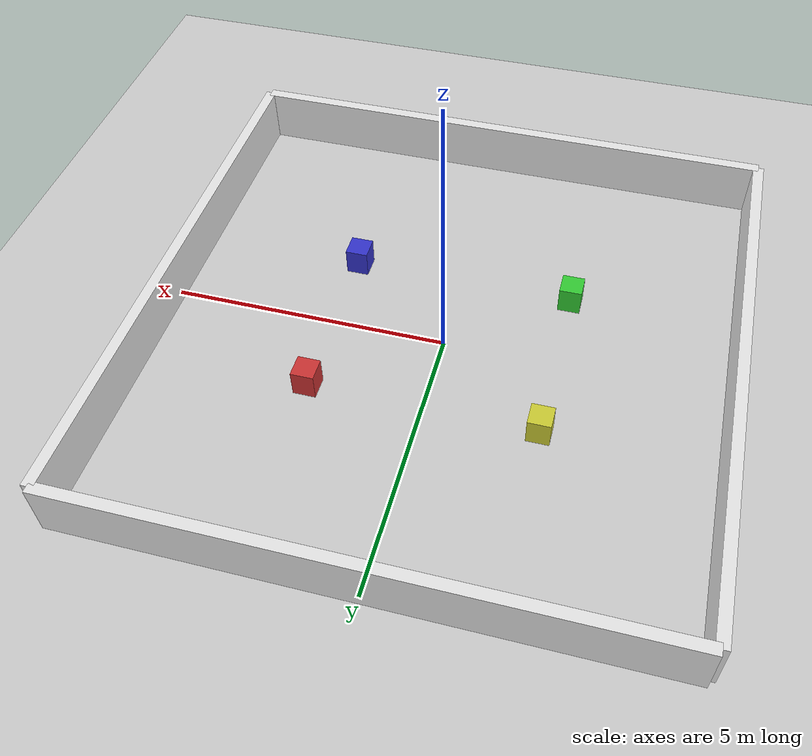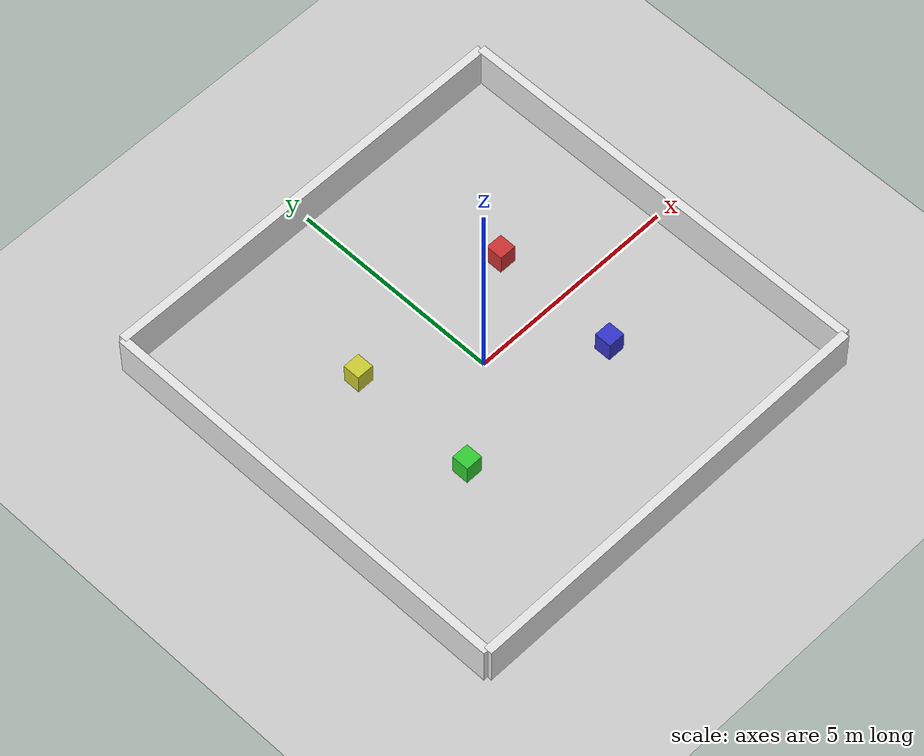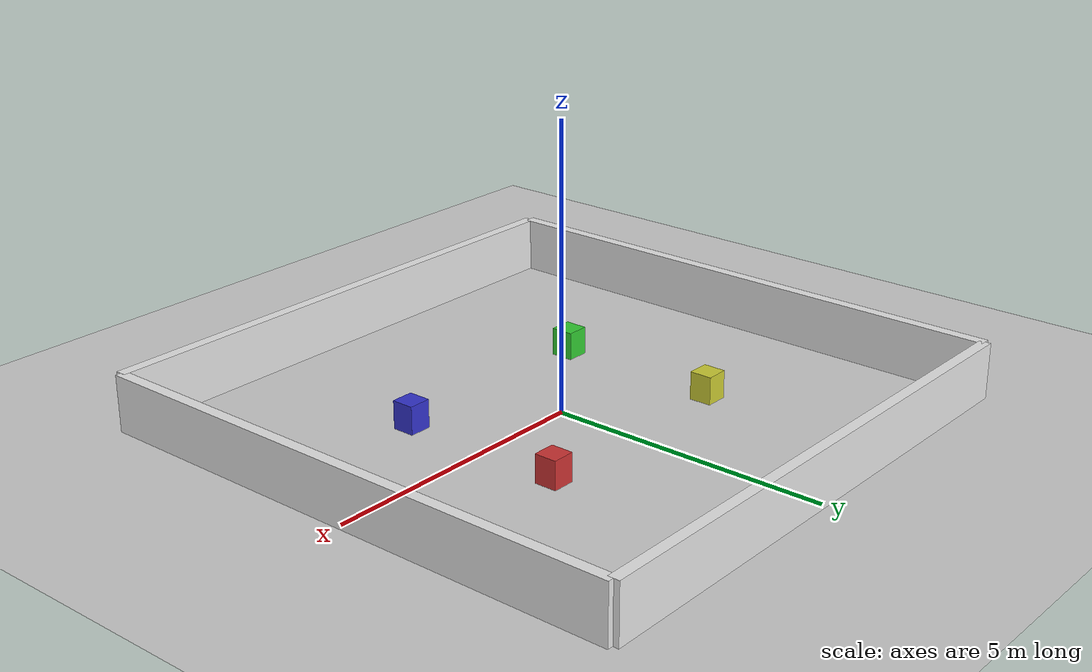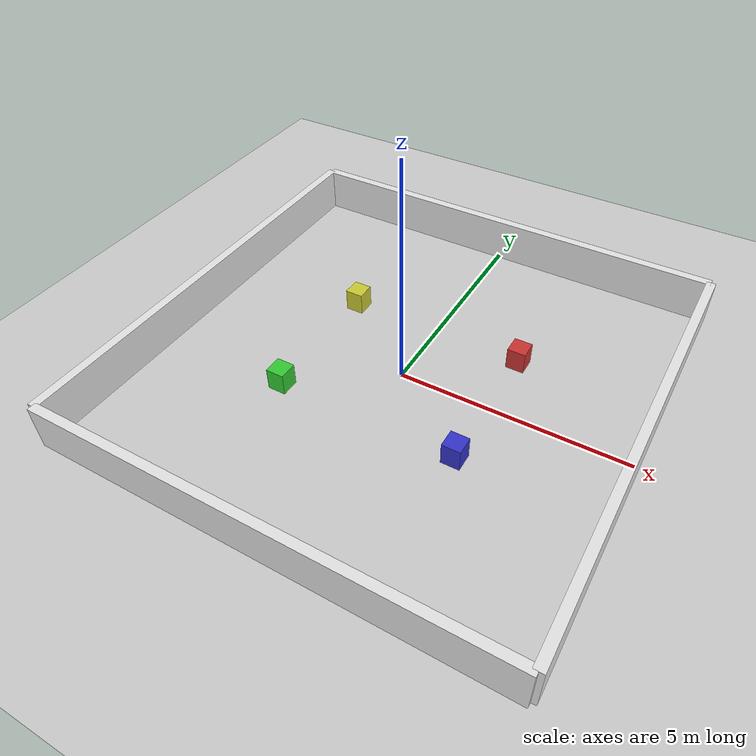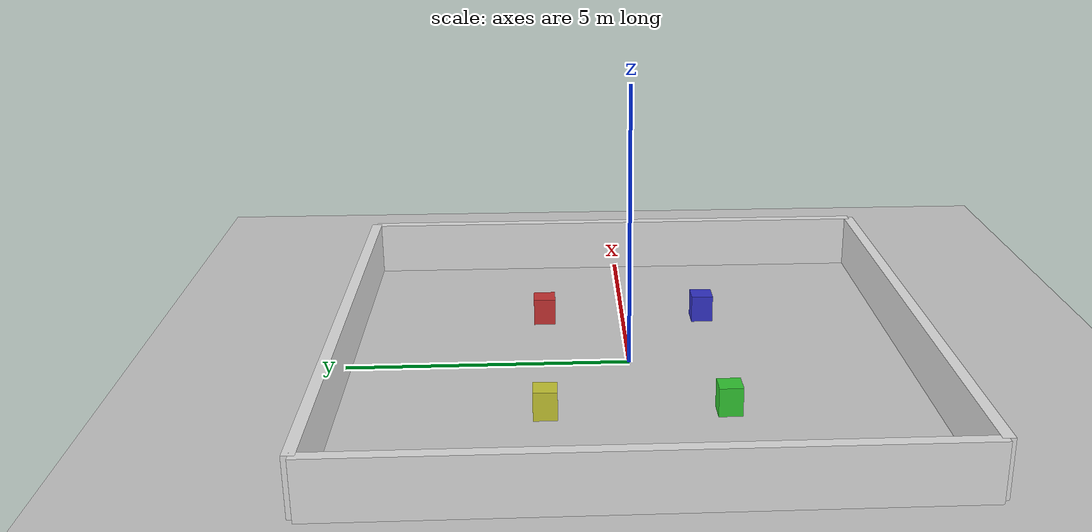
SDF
<?xml version="1.0" ?>
<sdf version="1.8">
  <world name="test_room">

    <physics name="default_physics" type="ode">
      <max_step_size>0.01</max_step_size>
      <real_time_factor>1.0</real_time_factor>
      <real_time_update_rate>100</real_time_update_rate>
    </physics>

    <plugin filename="gz-sim-physics-system"
            name="gz::sim::systems::Physics"/>
    <plugin filename="gz-sim-user-commands-system"
            name="gz::sim::systems::UserCommands"/>
    <plugin filename="gz-sim-scene-broadcaster-system"
            name="gz::sim::systems::SceneBroadcaster"/>
    <plugin filename="gz-sim-sensors-system"
            name="gz::sim::systems::Sensors">
      <render_engine>ogre2</render_engine>
    </plugin>

    <!-- Lighting -->
    <light type="directional" name="sun">
      <cast_shadows>true</cast_shadows>
      <pose>0 0 10 0 0 0</pose>
      <diffuse>1 1 1 1</diffuse>
      <specular>0.5 0.5 0.5 1</specular>
      <direction>-0.5 0.1 -0.9</direction>
    </light>

    <!-- Ground plane -->
    <model name="ground_plane">
      <static>true</static>
      <link name="link">
        <collision name="collision">
          <geometry><plane><normal>0 0 1</normal></plane></geometry>
        </collision>
        <visual name="visual">
          <geometry><plane><normal>0 0 1</normal><size>20 20</size></plane></geometry>
          <material><ambient>0.8 0.8 0.8 1</ambient></material>
        </visual>
      </link>
    </model>

    <!-- Room walls -->
    <model name="wall_north">
      <static>true</static>
      <pose>5 0 0.5 0 0 0</pose>
      <link name="link">
        <collision name="collision">
          <geometry><box><size>0.2 10 1.0</size></box></geometry>
        </collision>
        <visual name="visual">
          <geometry><box><size>0.2 10 1.0</size></box></geometry>
          <material><ambient>0.9 0.9 0.9 1</ambient></material>
        </visual>
      </link>
    </model>

    <model name="wall_south">
      <static>true</static>
      <pose>-5 0 0.5 0 0 0</pose>
      <link name="link">
        <collision name="collision">
          <geometry><box><size>0.2 10 1.0</size></box></geometry>
        </collision>
        <visual name="visual">
          <geometry><box><size>0.2 10 1.0</size></box></geometry>
          <material><ambient>0.9 0.9 0.9 1</ambient></material>
        </visual>
      </link>
    </model>

    <model name="wall_east">
      <static>true</static>
      <pose>0 5 0.5 0 0 0</pose>
      <link name="link">
        <collision name="collision">
          <geometry><box><size>10 0.2 1.0</size></box></geometry>
        </collision>
        <visual name="visual">
          <geometry><box><size>10 0.2 1.0</size></box></geometry>
          <material><ambient>0.9 0.9 0.9 1</ambient></material>
        </visual>
      </link>
    </model>

    <model name="wall_west">
      <static>true</static>
      <pose>0 -5 0.5 0 0 0</pose>
      <link name="link">
        <collision name="collision">
          <geometry><box><size>10 0.2 1.0</size></box></geometry>
        </collision>
        <visual name="visual">
          <geometry><box><size>10 0.2 1.0</size></box></geometry>
          <material><ambient>0.9 0.9 0.9 1</ambient></material>
        </visual>
      </link>
    </model>

    <!-- Landmark boxes — give RTAB-Map visual features to track -->
    <model name="box_a">
      <static>true</static>
      <pose>2.0 1.5 0.25 0 0 0</pose>
      <link name="link">
        <collision name="collision">
          <geometry><box><size>0.4 0.4 0.5</size></box></geometry>
        </collision>
        <visual name="visual">
          <geometry><box><size>0.4 0.4 0.5</size></box></geometry>
          <material><ambient>0.8 0.2 0.2 1</ambient></material>
        </visual>
      </link>
    </model>

    <model name="box_b">
      <static>true</static>
      <pose>-2.0 -1.5 0.25 0 0 0</pose>
      <link name="link">
        <collision name="collision">
          <geometry><box><size>0.4 0.4 0.5</size></box></geometry>
        </collision>
        <visual name="visual">
          <geometry><box><size>0.4 0.4 0.5</size></box></geometry>
          <material><ambient>0.2 0.8 0.2 1</ambient></material>
        </visual>
      </link>
    </model>

    <model name="box_c">
      <static>true</static>
      <pose>2.0 -1.5 0.25 0 0 0</pose>
      <link name="link">
        <collision name="collision">
          <geometry><box><size>0.4 0.4 0.5</size></box></geometry>
        </collision>
        <visual name="visual">
          <geometry><box><size>0.4 0.4 0.5</size></box></geometry>
          <material><ambient>0.2 0.2 0.8 1</ambient></material>
        </visual>
      </link>
    </model>

    <model name="box_d">
      <static>true</static>
      <pose>-2.0 1.5 0.25 0 0 0</pose>
      <link name="link">
        <collision name="collision">
          <geometry><box><size>0.4 0.4 0.5</size></box></geometry>
        </collision>
        <visual name="visual">
          <geometry><box><size>0.4 0.4 0.5</size></box></geometry>
          <material><ambient>0.8 0.8 0.2 1</ambient></material>
        </visual>
      </link>
    </model>

  </world>
</sdf>
